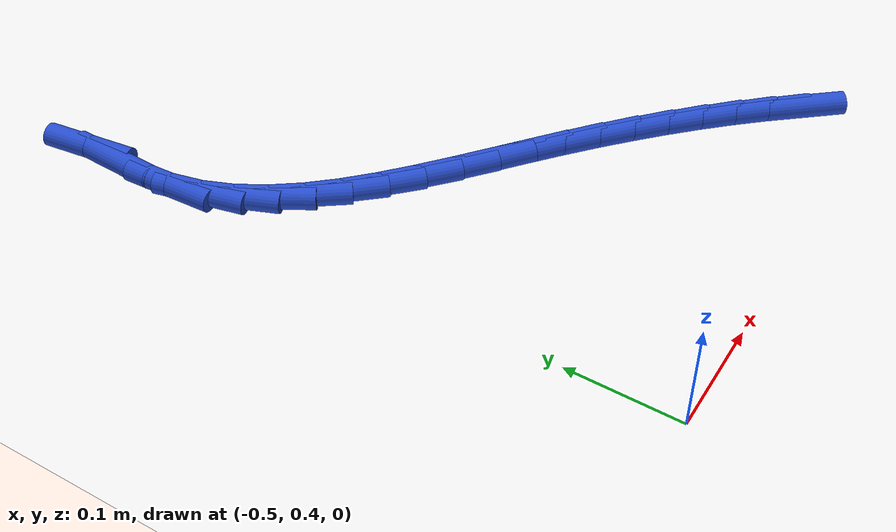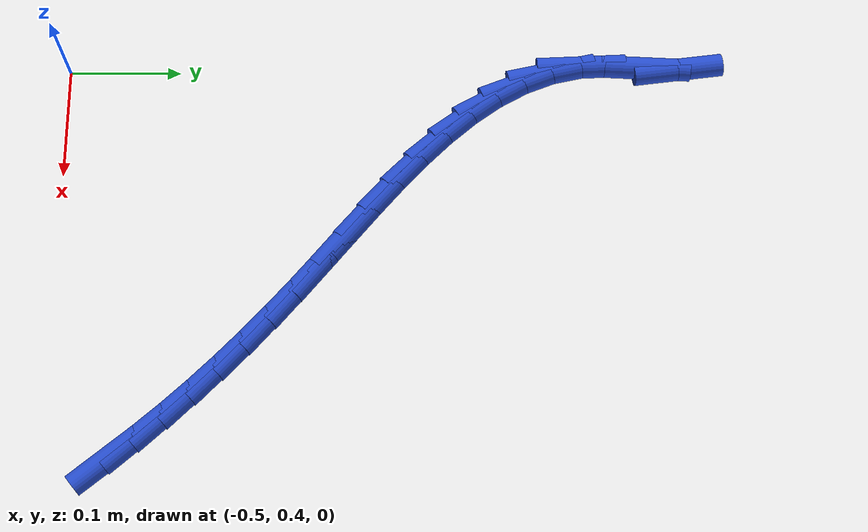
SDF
<sdf version="1.6">
 <world name="default">
  <model name="ground_plane">
   <static>1</static>
   <link name="link">
    <collision name="collision">
     <geometry><plane><normal>0 0 1</normal><size>100 100</size></plane></geometry>
     <surface><friction><ode><mu>100</mu><mu2>50</mu2></ode></friction></surface>
    </collision>
    <visual name="visual">
     <cast_shadows>0</cast_shadows>
     <geometry><plane><normal>0 0 1</normal><size>100 100</size></plane></geometry>
     <material>
      <script><uri>file://media/materials/scripts/gazebo.material</uri><name>Gazebo/WhiteGlow</name></script>
     </material>
    </visual>
   </link>
  </model>
  <model name="line">
   <link name="link_17">
    <pose>-0.1452456432512954 0.45945825411467367 0.01 0 1.57 -0.8877611106662171</pose>
    <collision name="collision">
     <geometry><cylinder><radius>0.01</radius><length>0.08</length></cylinder></geometry>
    </collision>
    <visual name="visual">
     <material>
      <script><name>Gazebo/Blue</name><uri>file://media/materials/scripts/gazebo.material</uri></script>
     </material>
     <geometry><cylinder><radius>0.01</radius><length>0.08</length></cylinder></geometry>
    </visual>
   </link>
   <link name="link_18">
    <pose>-0.16382626371061115 0.48229315927258143 0.01 0 1.57 -0.8549075555658437</pose>
    <collision name="collision">
     <geometry><cylinder><radius>0.01</radius><length>0.08</length></cylinder></geometry>
    </collision>
    <visual name="visual">
     <material>
      <script><name>Gazebo/Blue</name><uri>file://media/materials/scripts/gazebo.material</uri></script>
     </material>
     <geometry><cylinder><radius>0.01</radius><length>0.08</length></cylinder></geometry>
    </visual>
   </link>
   <link name="link_19">
    <pose>-0.18336077209212034 0.5047512582837358 0.01 0 1.57 -0.8242660721069408</pose>
    <collision name="collision">
     <geometry><cylinder><radius>0.01</radius><length>0.08</length></cylinder></geometry>
    </collision>
    <visual name="visual">
     <material>
      <script><name>Gazebo/Blue</name><uri>file://media/materials/scripts/gazebo.material</uri></script>
     </material>
     <geometry><cylinder><radius>0.01</radius><length>0.08</length></cylinder></geometry>
    </visual>
   </link>
   <link name="link_20">
    <pose>-0.20381517447595718 0.526860868419821 0.01 0 1.57 -0.7958113915275179</pose>
    <collision name="collision">
     <geometry><cylinder><radius>0.01</radius><length>0.08</length></cylinder></geometry>
    </collision>
    <visual name="visual">
     <material>
      <script><name>Gazebo/Blue</name><uri>file://media/materials/scripts/gazebo.material</uri></script>
     </material>
     <geometry><cylinder><radius>0.01</radius><length>0.08</length></cylinder></geometry>
    </visual>
   </link>
   <link name="link_21">
    <pose>-0.2251554769422556 0.5486503069525213 0.01 0 1.57 -0.7695004934138207</pose>
    <collision name="collision">
     <geometry><cylinder><radius>0.01</radius><length>0.08</length></cylinder></geometry>
    </collision>
    <visual name="visual">
     <material>
      <script><name>Gazebo/Blue</name><uri>file://media/materials/scripts/gazebo.material</uri></script>
     </material>
     <geometry><cylinder><radius>0.01</radius><length>0.08</length></cylinder></geometry>
    </visual>
   </link>
   <link name="link_22">
    <pose>-0.2473476855711496 0.5701478911535207 0.01 0 1.57 -0.7452771547110476</pose>
    <collision name="collision">
     <geometry><cylinder><radius>0.01</radius><length>0.08</length></cylinder></geometry>
    </collision>
    <visual name="visual">
     <material>
      <script><name>Gazebo/Blue</name><uri>file://media/materials/scripts/gazebo.material</uri></script>
     </material>
     <geometry><cylinder><radius>0.01</radius><length>0.08</length></cylinder></geometry>
    </visual>
   </link>
   <link name="link_23">
    <pose>-0.27035780644277346 0.591381938294504 0.01 0 1.57 -0.7230759189399014</pose>
    <collision name="collision">
     <geometry><cylinder><radius>0.01</radius><length>0.08</length></cylinder></geometry>
    </collision>
    <visual name="visual">
     <material>
      <script><name>Gazebo/Blue</name><uri>file://media/materials/scripts/gazebo.material</uri></script>
     </material>
     <geometry><cylinder><radius>0.01</radius><length>0.08</length></cylinder></geometry>
    </visual>
   </link>
   <link name="link_24">
    <pose>-0.29415184563726104 0.612380765647155 0.01 0 1.57 -0.7032720064144486</pose>
    <collision name="collision">
     <geometry><cylinder><radius>0.01</radius><length>0.08</length></cylinder></geometry>
    </collision>
    <visual name="visual">
     <material>
      <script><name>Gazebo/Blue</name><uri>file://media/materials/scripts/gazebo.material</uri></script>
     </material>
     <geometry><cylinder><radius>0.01</radius><length>0.08</length></cylinder></geometry>
    </visual>
   </link>
   <link name="link_25">
    <pose>-0.318679068460876 0.6331773289244056 0.01 0 1.57 -0.6923896158087164</pose>
    <collision name="collision">
     <geometry><cylinder><radius>0.01</radius><length>0.08</length></cylinder></geometry>
    </collision>
    <visual name="visual">
     <material>
      <script><name>Gazebo/Blue</name><uri>file://media/materials/scripts/gazebo.material</uri></script>
     </material>
     <geometry><cylinder><radius>0.01</radius><length>0.08</length></cylinder></geometry>
    </visual>
   </link>
   <link name="link_26">
    <pose>-0.34363506588908055 0.6538748705229784 0.01 0 1.57 -0.6952152991175543</pose>
    <collision name="collision">
     <geometry><cylinder><radius>0.01</radius><length>0.08</length></cylinder></geometry>
    </collision>
    <visual name="visual">
     <material>
      <script><name>Gazebo/Blue</name><uri>file://media/materials/scripts/gazebo.material</uri></script>
     </material>
     <geometry><cylinder><radius>0.01</radius><length>0.08</length></cylinder></geometry>
    </visual>
   </link>
   <link name="link_27">
    <pose>-0.3685185091740377 0.6746311942699155 0.01 0 1.57 -0.7119845720114346</pose>
    <collision name="collision">
     <geometry><cylinder><radius>0.01</radius><length>0.08</length></cylinder></geometry>
    </collision>
    <visual name="visual">
     <material>
      <script><name>Gazebo/Blue</name><uri>file://media/materials/scripts/gazebo.material</uri></script>
     </material>
     <geometry><cylinder><radius>0.01</radius><length>0.08</length></cylinder></geometry>
    </visual>
   </link>
   <link name="link_28">
    <pose>-0.3928229084245286 0.6956055340133869 0.01 0 1.57 -0.7435277266208112</pose>
    <collision name="collision">
     <geometry><cylinder><radius>0.01</radius><length>0.08</length></cylinder></geometry>
    </collision>
    <visual name="visual">
     <material>
      <script><name>Gazebo/Blue</name><uri>file://media/materials/scripts/gazebo.material</uri></script>
     </material>
     <geometry><cylinder><radius>0.01</radius><length>0.08</length></cylinder></geometry>
    </visual>
   </link>
   <link name="link_29">
    <pose>-0.4160417737493343 0.7169571236015632 0.01 0 1.57 -0.7914013610662588</pose>
    <collision name="collision">
     <geometry><cylinder><radius>0.01</radius><length>0.08</length></cylinder></geometry>
    </collision>
    <visual name="visual">
     <material>
      <script><name>Gazebo/Blue</name><uri>file://media/materials/scripts/gazebo.material</uri></script>
     </material>
     <geometry><cylinder><radius>0.01</radius><length>0.08</length></cylinder></geometry>
    </visual>
   </link>
   <link name="link_30">
    <pose>-0.43766861525723555 0.738845196882615 0.01 0 1.57 -0.8578266798993925</pose>
    <collision name="collision">
     <geometry><cylinder><radius>0.01</radius><length>0.08</length></cylinder></geometry>
    </collision>
    <visual name="visual">
     <material>
      <script><name>Gazebo/Blue</name><uri>file://media/materials/scripts/gazebo.material</uri></script>
     </material>
     <geometry><cylinder><radius>0.01</radius><length>0.08</length></cylinder></geometry>
    </visual>
   </link>
   <link name="link_31">
    <pose>-0.4571969430570132 0.7614289877047125 0.01 0 1.57 -0.9454418568372892</pose>
    <collision name="collision">
     <geometry><cylinder><radius>0.01</radius><length>0.08</length></cylinder></geometry>
    </collision>
    <visual name="visual">
     <material>
      <script><name>Gazebo/Blue</name><uri>file://media/materials/scripts/gazebo.material</uri></script>
     </material>
     <geometry><cylinder><radius>0.01</radius><length>0.08</length></cylinder></geometry>
    </visual>
   </link>
   <link name="link_32">
    <pose>-0.4741202672574485 0.7848677299160267 0.01 0 1.57 -1.05663606346952</pose>
    <collision name="collision">
     <geometry><cylinder><radius>0.01</radius><length>0.08</length></cylinder></geometry>
    </collision>
    <visual name="visual">
     <material>
      <script><name>Gazebo/Blue</name><uri>file://media/materials/scripts/gazebo.material</uri></script>
     </material>
     <geometry><cylinder><radius>0.01</radius><length>0.08</length></cylinder></geometry>
    </visual>
   </link>
   <link name="link_33">
    <pose>-0.4879320979673221 0.8093206573647278 0.01 0 1.57 -1.1921984951771154</pose>
    <collision name="collision">
     <geometry><cylinder><radius>0.01</radius><length>0.08</length></cylinder></geometry>
    </collision>
    <visual name="visual">
     <material>
      <script><name>Gazebo/Blue</name><uri>file://media/materials/scripts/gazebo.material</uri></script>
     </material>
     <geometry><cylinder><radius>0.01</radius><length>0.08</length></cylinder></geometry>
    </visual>
   </link>
   <link name="link_34">
    <pose>-0.4981259452954151 0.8349470038989861 0.01 0 1.57 -1.3493548156207011</pose>
    <collision name="collision">
     <geometry><cylinder><radius>0.01</radius><length>0.08</length></cylinder></geometry>
    </collision>
    <visual name="visual">
     <material>
      <script><name>Gazebo/Blue</name><uri>file://media/materials/scripts/gazebo.material</uri></script>
     </material>
     <geometry><cylinder><radius>0.01</radius><length>0.08</length></cylinder></geometry>
    </visual>
   </link>
   <link name="link_35">
    <pose>-0.5041953193505084 0.8619060033669725 0.01 0 1.57 -1.5197356641859492</pose>
    <collision name="collision">
     <geometry><cylinder><radius>0.01</radius><length>0.08</length></cylinder></geometry>
    </collision>
    <visual name="visual">
     <material>
      <script><name>Gazebo/Blue</name><uri>file://media/materials/scripts/gazebo.material</uri></script>
     </material>
     <geometry><cylinder><radius>0.01</radius><length>0.08</length></cylinder></geometry>
    </visual>
   </link>
   <link name="link_37">
    <pose>-0.5036378746172189 0.9198391095871631 0.01 0 1.57 1.5279328505910452</pose>
    <collision name="collision">
     <geometry><cylinder><radius>0.01</radius><length>0.08</length></cylinder></geometry>
    </collision>
    <visual name="visual">
     <material>
      <script><name>Gazebo/Blue</name><uri>file://media/materials/scripts/gazebo.material</uri></script>
     </material>
     <geometry><cylinder><radius>0.01</radius><length>0.08</length></cylinder></geometry>
    </visual>
   </link>
   <link name="link_38">
    <pose>-0.5023955933649734 0.9488036375215748 0.01 0 1.57 -1.4410591982522702</pose>
    <collision name="collision">
     <geometry><cylinder><radius>0.01</radius><length>0.08</length></cylinder></geometry>
    </collision>
    <visual name="visual">
     <material>
      <script><name>Gazebo/Blue</name><uri>file://media/materials/scripts/gazebo.material</uri></script>
     </material>
     <geometry><cylinder><radius>0.01</radius><length>0.08</length></cylinder></geometry>
    </visual>
   </link>
  </model>
 </world>
</sdf>
